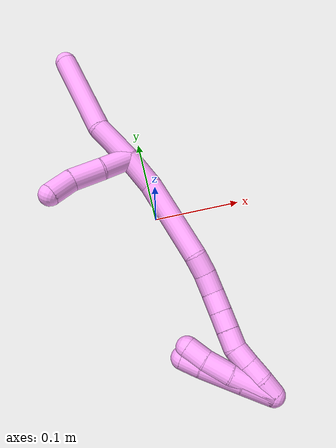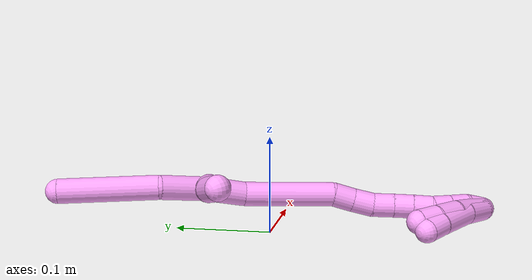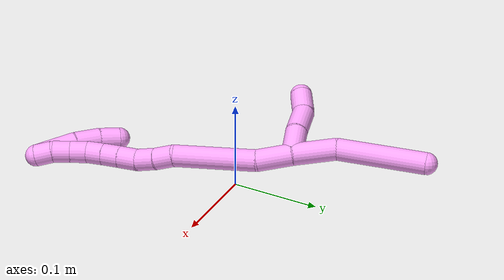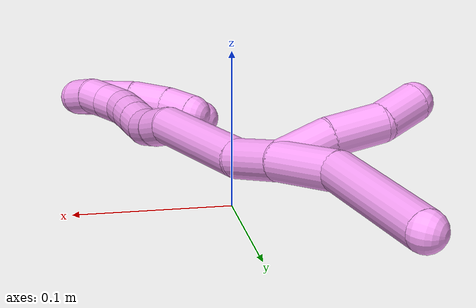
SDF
<sdf version="1.7">
 <world name="default">
  <model name="photoneo_s_sensor">
   <static>1</static>
   <pose>0 0 2 1.57079 1.57079 3.14159</pose>
   <link name="link">
    <inertial><mass>0.1</mass></inertial>
    <sensor name="sensor" type="depth">
     <update_rate>30</update_rate>
     <camera>
      <horizontal_fov>1.22</horizontal_fov>
      <image><width>1920</width><height>1200</height><format>B8G8R8</format></image>
      <clip><near>0.1</near><far>4</far></clip>
      <depth_camera><output>points</output></depth_camera>
     </camera>
     <plugin name="camera_plugin" filename="libgazebo_ros_depth_camera.so">
      <baseline>0.2</baseline>
      <alwaysOn>1</alwaysOn>
      <updateRate>0.0</updateRate>
      <cameraName>camera_ir</cameraName>
      <imageTopicName>/camera/color/image_raw</imageTopicName>
      <cameraInfoTopicName>/camera/color/camera_info</cameraInfoTopicName>
      <depthImageTopicName>/camera/depth/image_raw</depthImageTopicName>
      <depthImageCameraInfoTopicName>/camera/depth/camera_info</depthImageCameraInfoTopicName>
      <pointCloudTopicName>/camera/depth/points</pointCloudTopicName>
      <frameName>fr_optical</frameName>
      <pointCloudCutoff>0.1</pointCloudCutoff>
      <pointCloudCutoffMax>2.0</pointCloudCutoffMax>
      <distortionK1>0</distortionK1>
      <distortionK2>0</distortionK2>
      <distortionK3>0</distortionK3>
      <distortionT1>0</distortionT1>
      <distortionT2>0</distortionT2>
      <CxPrime>0</CxPrime>
      <Cx>0</Cx>
      <Cy>0</Cy>
      <focalLength>0</focalLength>
      <hackBaseline>0</hackBaseline>
     </plugin>
    </sensor>
   </link>
  </model>
  <model name="bin">
   <static>1</static>
   <link name="bottom">
    <collision name="collision-bottom">
     <pose>0 0 -0.01 0 -0 0</pose>
     <geometry><box><size>0.8 0.6 0.02</size></box></geometry>
     <surface>
      <friction><ode><mu>100</mu><mu2>100</mu2></ode></friction>
      <contact><collide_bitmask>65535</collide_bitmask></contact>
     </surface>
    </collision>
   </link>
   <link name="west_wall">
    <collision name="collision-west_wall">
     <pose>-0.41 0 0.1 0 -0 0</pose>
     <geometry><box><size>0.02 0.6 0.2</size></box></geometry>
     <surface>
      <friction><ode><mu>100</mu><mu2>100</mu2></ode></friction>
      <contact><collide_bitmask>65535</collide_bitmask></contact>
     </surface>
    </collision>
   </link>
   <link name="east_wall">
    <collision name="collision-east_wall">
     <pose>0.41 0 0.1 0 -0 0</pose>
     <geometry><box><size>0.02 0.6 0.2</size></box></geometry>
     <surface>
      <friction><ode><mu>100</mu><mu2>100</mu2></ode></friction>
      <contact><collide_bitmask>65535</collide_bitmask></contact>
     </surface>
    </collision>
   </link>
   <link name="south_wall">
    <collision name="collision-south_wall">
     <pose>0 -0.31 0.1 0 -0 0</pose>
     <geometry><box><size>0.8 0.02 0.2</size></box></geometry>
     <surface>
      <friction><ode><mu>100</mu><mu2>100</mu2></ode></friction>
      <contact><collide_bitmask>65535</collide_bitmask></contact>
     </surface>
    </collision>
   </link>
   <link name="north_wall">
    <collision name="collision-north_wall">
     <pose>0 0.31 0.1 0 -0 0</pose>
     <geometry><box><size>0.8 0.02 0.2</size></box></geometry>
     <surface>
      <friction><ode><mu>100</mu><mu2>100</mu2></ode></friction>
      <contact><collide_bitmask>65535</collide_bitmask></contact>
     </surface>
    </collision>
   </link>
  </model>
  <model name="4">
   <static>0</static>
   <link name="4">
    <collision name="collision-cylinder-e_1_2_8">
     <pose>0.000713 0.009775 -0.022776 -2.7362 0.028779 -0.13981</pose>
     <geometry><cylinder><radius>0.0125</radius><length>0.049591</length></cylinder></geometry>
     <surface>
      <friction><ode><mu>1.16</mu><mu2>1.16</mu2><slip1>0</slip1><slip2>0</slip2></ode></friction>
      <contact><ode><kp>1e+06</kp><kd>1</kd><max_vel>0</max_vel><min_depth>0.001</min_depth></ode></contact>
     </surface>
    </collision>
    <visual name="visual-cylinder-e_1_2_8">
     <pose>0.000713 0.009775 -0.022776 -2.7362 0.028779 -0.13981</pose>
     <geometry><cylinder><radius>0.0125</radius><length>0.049591</length></cylinder></geometry>
     <material><ambient>1 0.65098 0.996078 1</ambient></material>
    </visual>
    <collision name="collision-cylinder-e_2_8_6">
     <pose>0.017223 0.046143 -0.085097 -2.54957 0.32006 -0.973568</pose>
     <geometry><cylinder><radius>0.0125</radius><length>0.100409</length></cylinder></geometry>
     <surface>
      <friction><ode><mu>1.16</mu><mu2>1.16</mu2><slip1>0</slip1><slip2>0</slip2></ode></friction>
      <contact><ode><kp>1e+06</kp><kd>1</kd><max_vel>0</max_vel><min_depth>0.001</min_depth></ode></contact>
     </surface>
    </collision>
    <visual name="visual-cylinder-e_2_8_6">
     <pose>0.017223 0.046143 -0.085097 -2.54957 0.32006 -0.973568</pose>
     <geometry><cylinder><radius>0.0125</radius><length>0.100409</length></cylinder></geometry>
     <material><ambient>1 0.65098 0.996078 1</ambient></material>
    </visual>
    <collision name="collision-cylinder-e_1_2_9">
     <pose>-0.012884 -0.008161 -0.008412 2.37134 -0.832647 -1.65758</pose>
     <geometry><cylinder><radius>0.0125</radius><length>0.034834</length></cylinder></geometry>
     <surface>
      <friction><ode><mu>1.16</mu><mu2>1.16</mu2><slip1>0</slip1><slip2>0</slip2></ode></friction>
      <contact><ode><kp>1e+06</kp><kd>1</kd><max_vel>0</max_vel><min_depth>0.001</min_depth></ode></contact>
     </surface>
    </collision>
    <visual name="visual-cylinder-e_1_2_9">
     <pose>-0.012884 -0.008161 -0.008412 2.37134 -0.832647 -1.65758</pose>
     <geometry><cylinder><radius>0.0125</radius><length>0.034834</length></cylinder></geometry>
     <material><ambient>1 0.65098 0.996078 1</ambient></material>
    </visual>
    <collision name="collision-cylinder-e_2_9_10">
     <pose>-0.036897 -0.025715 -0.027354 2.41321 -0.66787 -1.47673</pose>
     <geometry><cylinder><radius>0.0125</radius><length>0.035943</length></cylinder></geometry>
     <surface>
      <friction><ode><mu>1.16</mu><mu2>1.16</mu2><slip1>0</slip1><slip2>0</slip2></ode></friction>
      <contact><ode><kp>1e+06</kp><kd>1</kd><max_vel>0</max_vel><min_depth>0.001</min_depth></ode></contact>
     </surface>
    </collision>
    <visual name="visual-cylinder-e_2_9_10">
     <pose>-0.036897 -0.025715 -0.027354 2.41321 -0.66787 -1.47673</pose>
     <geometry><cylinder><radius>0.0125</radius><length>0.035943</length></cylinder></geometry>
     <material><ambient>1 0.65098 0.996078 1</ambient></material>
    </visual>
    <collision name="collision-cylinder-e_3_10_5">
     <pose>-0.059169 -0.043542 -0.042151 2.03922 -0.867211 -1.29103</pose>
     <geometry><cylinder><radius>0.0125</radius><length>0.029223</length></cylinder></geometry>
     <surface>
      <friction><ode><mu>1.16</mu><mu2>1.16</mu2><slip1>0</slip1><slip2>0</slip2></ode></friction>
      <contact><ode><kp>1e+06</kp><kd>1</kd><max_vel>0</max_vel><min_depth>0.001</min_depth></ode></contact>
     </surface>
    </collision>
    <visual name="visual-cylinder-e_3_10_5">
     <pose>-0.059169 -0.043542 -0.042151 2.03922 -0.867211 -1.29103</pose>
     <geometry><cylinder><radius>0.0125</radius><length>0.029223</length></cylinder></geometry>
     <material><ambient>1 0.65098 0.996078 1</ambient></material>
    </visual>
    <collision name="collision-cylinder-e_1_2_11">
     <pose>0.000258 -0.009718 0.017596 0.504609 0.012817 0.003304</pose>
     <geometry><cylinder><radius>0.0125</radius><length>0.040206</length></cylinder></geometry>
     <surface>
      <friction><ode><mu>1.16</mu><mu2>1.16</mu2><slip1>0</slip1><slip2>0</slip2></ode></friction>
      <contact><ode><kp>1e+06</kp><kd>1</kd><max_vel>0</max_vel><min_depth>0.001</min_depth></ode></contact>
     </surface>
    </collision>
    <visual name="visual-cylinder-e_1_2_11">
     <pose>0.000258 -0.009718 0.017596 0.504609 0.012817 0.003304</pose>
     <geometry><cylinder><radius>0.0125</radius><length>0.040206</length></cylinder></geometry>
     <material><ambient>1 0.65098 0.996078 1</ambient></material>
    </visual>
    <collision name="collision-cylinder-e_2_11_12">
     <pose>-0.009602 -0.043342 0.074087 0.551092 -0.21809 -0.061888</pose>
     <geometry><cylinder><radius>0.0125</radius><length>0.093523</length></cylinder></geometry>
     <surface>
      <friction><ode><mu>1.16</mu><mu2>1.16</mu2><slip1>0</slip1><slip2>0</slip2></ode></friction>
      <contact><ode><kp>1e+06</kp><kd>1</kd><max_vel>0</max_vel><min_depth>0.001</min_depth></ode></contact>
     </surface>
    </collision>
    <visual name="visual-cylinder-e_2_11_12">
     <pose>-0.009602 -0.043342 0.074087 0.551092 -0.21809 -0.061888</pose>
     <geometry><cylinder><radius>0.0125</radius><length>0.093523</length></cylinder></geometry>
     <material><ambient>1 0.65098 0.996078 1</ambient></material>
    </visual>
    <collision name="collision-cylinder-e_3_12_13">
     <pose>-0.019688 -0.074482 0.121252 0.718696 0.002891 0.001086</pose>
     <geometry><cylinder><radius>0.0125</radius><length>0.021977</length></cylinder></geometry>
     <surface>
      <friction><ode><mu>1.16</mu><mu2>1.16</mu2><slip1>0</slip1><slip2>0</slip2></ode></friction>
      <contact><ode><kp>1e+06</kp><kd>1</kd><max_vel>0</max_vel><min_depth>0.001</min_depth></ode></contact>
     </surface>
    </collision>
    <visual name="visual-cylinder-e_3_12_13">
     <pose>-0.019688 -0.074482 0.121252 0.718696 0.002891 0.001086</pose>
     <geometry><cylinder><radius>0.0125</radius><length>0.021977</length></cylinder></geometry>
     <material><ambient>1 0.65098 0.996078 1</ambient></material>
    </visual>
    <collision name="collision-cylinder-e_4_13_14">
     <pose>-0.020852 -0.089499 0.13742 0.778068 -0.107403 -0.044062</pose>
     <geometry><cylinder><radius>0.0125</radius><length>0.022303</length></cylinder></geometry>
     <surface>
      <friction><ode><mu>1.16</mu><mu2>1.16</mu2><slip1>0</slip1><slip2>0</slip2></ode></friction>
      <contact><ode><kp>1e+06</kp><kd>1</kd><max_vel>0</max_vel><min_depth>0.001</min_depth></ode></contact>
     </surface>
    </collision>
    <visual name="visual-cylinder-e_4_13_14">
     <pose>-0.020852 -0.089499 0.13742 0.778068 -0.107403 -0.044062</pose>
     <geometry><cylinder><radius>0.0125</radius><length>0.022303</length></cylinder></geometry>
     <material><ambient>1 0.65098 0.996078 1</ambient></material>
    </visual>
    <collision name="collision-cylinder-e_5_14_15">
     <pose>-0.025511 -0.10401 0.15326 0.702868 -0.321281 -0.118683</pose>
     <geometry><cylinder><radius>0.0125</radius><length>0.021941</length></cylinder></geometry>
     <surface>
      <friction><ode><mu>1.16</mu><mu2>1.16</mu2><slip1>0</slip1><slip2>0</slip2></ode></friction>
      <contact><ode><kp>1e+06</kp><kd>1</kd><max_vel>0</max_vel><min_depth>0.001</min_depth></ode></contact>
     </surface>
    </collision>
    <visual name="visual-cylinder-e_5_14_15">
     <pose>-0.025511 -0.10401 0.15326 0.702868 -0.321281 -0.118683</pose>
     <geometry><cylinder><radius>0.0125</radius><length>0.021941</length></cylinder></geometry>
     <material><ambient>1 0.65098 0.996078 1</ambient></material>
    </visual>
    <collision name="collision-cylinder-e_6_15_16">
     <pose>-0.032081 -0.116984 0.16838 0.716075 -0.315473 -0.118887</pose>
     <geometry><cylinder><radius>0.0125</radius><length>0.020019</length></cylinder></geometry>
     <surface>
      <friction><ode><mu>1.16</mu><mu2>1.16</mu2><slip1>0</slip1><slip2>0</slip2></ode></friction>
      <contact><ode><kp>1e+06</kp><kd>1</kd><max_vel>0</max_vel><min_depth>0.001</min_depth></ode></contact>
     </surface>
    </collision>
    <visual name="visual-cylinder-e_6_15_16">
     <pose>-0.032081 -0.116984 0.16838 0.716075 -0.315473 -0.118887</pose>
     <geometry><cylinder><radius>0.0125</radius><length>0.020019</length></cylinder></geometry>
     <material><ambient>1 0.65098 0.996078 1</ambient></material>
    </visual>
    <collision name="collision-cylinder-e_7_16_17">
     <pose>-0.038061 -0.129571 0.182749 0.722674 -0.291276 -0.110754</pose>
     <geometry><cylinder><radius>0.0125</radius><length>0.020017</length></cylinder></geometry>
     <surface>
      <friction><ode><mu>1.16</mu><mu2>1.16</mu2><slip1>0</slip1><slip2>0</slip2></ode></friction>
      <contact><ode><kp>1e+06</kp><kd>1</kd><max_vel>0</max_vel><min_depth>0.001</min_depth></ode></contact>
     </surface>
    </collision>
    <visual name="visual-cylinder-e_7_16_17">
     <pose>-0.038061 -0.129571 0.182749 0.722674 -0.291276 -0.110754</pose>
     <geometry><cylinder><radius>0.0125</radius><length>0.020017</length></cylinder></geometry>
     <material><ambient>1 0.65098 0.996078 1</ambient></material>
    </visual>
    <collision name="collision-cylinder-e_8_17_18">
     <pose>-0.04258 -0.140018 0.198914 0.429057 -0.165147 -0.036061</pose>
     <geometry><cylinder><radius>0.0125</radius><length>0.02001</length></cylinder></geometry>
     <surface>
      <friction><ode><mu>1.16</mu><mu2>1.16</mu2><slip1>0</slip1><slip2>0</slip2></ode></friction>
      <contact><ode><kp>1e+06</kp><kd>1</kd><max_vel>0</max_vel><min_depth>0.001</min_depth></ode></contact>
     </surface>
    </collision>
    <visual name="visual-cylinder-e_8_17_18">
     <pose>-0.04258 -0.140018 0.198914 0.429057 -0.165147 -0.036061</pose>
     <geometry><cylinder><radius>0.0125</radius><length>0.02001</length></cylinder></geometry>
     <material><ambient>1 0.65098 0.996078 1</ambient></material>
    </visual>
    <collision name="collision-cylinder-e_9_18_19">
     <pose>-0.04577 -0.147994 0.216981 0.402499 -0.155053 -0.031693</pose>
     <geometry><cylinder><radius>0.0125</radius><length>0.020004</length></cylinder></geometry>
     <surface>
      <friction><ode><mu>1.16</mu><mu2>1.16</mu2><slip1>0</slip1><slip2>0</slip2></ode></friction>
      <contact><ode><kp>1e+06</kp><kd>1</kd><max_vel>0</max_vel><min_depth>0.001</min_depth></ode></contact>
     </surface>
    </collision>
    <visual name="visual-cylinder-e_9_18_19">
     <pose>-0.04577 -0.147994 0.216981 0.402499 -0.155053 -0.031693</pose>
     <geometry><cylinder><radius>0.0125</radius><length>0.020004</length></cylinder></geometry>
     <material><ambient>1 0.65098 0.996078 1</ambient></material>
    </visual>
    <collision name="collision-cylinder-e_10_19_1">
     <pose>-0.046771 -0.15695 0.234667 0.534238 0.054293 0.014861</pose>
     <geometry><cylinder><radius>0.0125</radius><length>0.02</length></cylinder></geometry>
     <surface>
      <friction><ode><mu>1.16</mu><mu2>1.16</mu2><slip1>0</slip1><slip2>0</slip2></ode></friction>
      <contact><ode><kp>1e+06</kp><kd>1</kd><max_vel>0</max_vel><min_depth>0.001</min_depth></ode></contact>
     </surface>
    </collision>
    <visual name="visual-cylinder-e_10_19_1">
     <pose>-0.046771 -0.15695 0.234667 0.534238 0.054293 0.014861</pose>
     <geometry><cylinder><radius>0.0125</radius><length>0.02</length></cylinder></geometry>
     <material><ambient>1 0.65098 0.996078 1</ambient></material>
    </visual>
    <collision name="collision-cylinder-e_1_1_20">
     <pose>-0.049388 -0.161873 0.226558 -3.13198 -0.186898 3.03915</pose>
     <geometry><cylinder><radius>0.0125</radius><length>0.034</length></cylinder></geometry>
     <surface>
      <friction><ode><mu>1.16</mu><mu2>1.16</mu2><slip1>0</slip1><slip2>0</slip2></ode></friction>
      <contact><ode><kp>1e+06</kp><kd>1</kd><max_vel>0</max_vel><min_depth>0.001</min_depth></ode></contact>
     </surface>
    </collision>
    <visual name="visual-cylinder-e_1_1_20">
     <pose>-0.049388 -0.161873 0.226558 -3.13198 -0.186898 3.03915</pose>
     <geometry><cylinder><radius>0.0125</radius><length>0.034</length></cylinder></geometry>
     <material><ambient>1 0.65098 0.996078 1</ambient></material>
    </visual>
    <collision name="collision-cylinder-e_2_20_21">
     <pose>-0.054123 -0.162969 0.187922 3.08439 -0.071656 -1.79428</pose>
     <geometry><cylinder><radius>0.0125</radius><length>0.04405</length></cylinder></geometry>
     <surface>
      <friction><ode><mu>1.16</mu><mu2>1.16</mu2><slip1>0</slip1><slip2>0</slip2></ode></friction>
      <contact><ode><kp>1e+06</kp><kd>1</kd><max_vel>0</max_vel><min_depth>0.001</min_depth></ode></contact>
     </surface>
    </collision>
    <visual name="visual-cylinder-e_2_20_21">
     <pose>-0.054123 -0.162969 0.187922 3.08439 -0.071656 -1.79428</pose>
     <geometry><cylinder><radius>0.0125</radius><length>0.04405</length></cylinder></geometry>
     <material><ambient>1 0.65098 0.996078 1</ambient></material>
    </visual>
    <collision name="collision-cylinder-e_3_21_4">
     <pose>-0.055478 -0.164775 0.15503 3.09147 0.020242 0.767547</pose>
     <geometry><cylinder><radius>0.0125</radius><length>0.021951</length></cylinder></geometry>
     <surface>
      <friction><ode><mu>1.16</mu><mu2>1.16</mu2><slip1>0</slip1><slip2>0</slip2></ode></friction>
      <contact><ode><kp>1e+06</kp><kd>1</kd><max_vel>0</max_vel><min_depth>0.001</min_depth></ode></contact>
     </surface>
    </collision>
    <visual name="visual-cylinder-e_3_21_4">
     <pose>-0.055478 -0.164775 0.15503 3.09147 0.020242 0.767547</pose>
     <geometry><cylinder><radius>0.0125</radius><length>0.021951</length></cylinder></geometry>
     <material><ambient>1 0.65098 0.996078 1</ambient></material>
    </visual>
    <collision name="collision-cylinder-e_1_1_22">
     <pose>-0.050675 -0.160213 0.219769 -3.06424 -0.186496 2.35698</pose>
     <geometry><cylinder><radius>0.0125</radius><length>0.047956</length></cylinder></geometry>
     <surface>
      <friction><ode><mu>1.16</mu><mu2>1.16</mu2><slip1>0</slip1><slip2>0</slip2></ode></friction>
      <contact><ode><kp>1e+06</kp><kd>1</kd><max_vel>0</max_vel><min_depth>0.001</min_depth></ode></contact>
     </surface>
    </collision>
    <visual name="visual-cylinder-e_1_1_22">
     <pose>-0.050675 -0.160213 0.219769 -3.06424 -0.186496 2.35698</pose>
     <geometry><cylinder><radius>0.0125</radius><length>0.047956</length></cylinder></geometry>
     <material><ambient>1 0.65098 0.996078 1</ambient></material>
    </visual>
    <collision name="collision-cylinder-e_2_22_23">
     <pose>-0.055769 -0.157173 0.181819 -3.05747 -0.04467 0.975961</pose>
     <geometry><cylinder><radius>0.0125</radius><length>0.029048</length></cylinder></geometry>
     <surface>
      <friction><ode><mu>1.16</mu><mu2>1.16</mu2><slip1>0</slip1><slip2>0</slip2></ode></friction>
      <contact><ode><kp>1e+06</kp><kd>1</kd><max_vel>0</max_vel><min_depth>0.001</min_depth></ode></contact>
     </surface>
    </collision>
    <visual name="visual-cylinder-e_2_22_23">
     <pose>-0.055769 -0.157173 0.181819 -3.05747 -0.04467 0.975961</pose>
     <geometry><cylinder><radius>0.0125</radius><length>0.029048</length></cylinder></geometry>
     <material><ambient>1 0.65098 0.996078 1</ambient></material>
    </visual>
    <collision name="collision-cylinder-e_3_23_3">
     <pose>-0.055306 -0.154074 0.156072 -2.9765 0.096892 -1.06013</pose>
     <geometry><cylinder><radius>0.0125</radius><length>0.022996</length></cylinder></geometry>
     <surface>
      <friction><ode><mu>1.16</mu><mu2>1.16</mu2><slip1>0</slip1><slip2>0</slip2></ode></friction>
      <contact><ode><kp>1e+06</kp><kd>1</kd><max_vel>0</max_vel><min_depth>0.001</min_depth></ode></contact>
     </surface>
    </collision>
    <visual name="visual-cylinder-e_3_23_3">
     <pose>-0.055306 -0.154074 0.156072 -2.9765 0.096892 -1.06013</pose>
     <geometry><cylinder><radius>0.0125</radius><length>0.022996</length></cylinder></geometry>
     <material><ambient>1 0.65098 0.996078 1</ambient></material>
    </visual>
    <collision name="collision-sphere-3">
     <pose>-0.054193 -0.152193 0.144784 0 -0 0</pose>
     <geometry><sphere><radius>0.0125</radius></sphere></geometry>
     <surface>
      <friction><ode><mu>1.16</mu><mu2>1.16</mu2><slip1>0</slip1><slip2>0</slip2></ode></friction>
      <contact><ode><kp>1e+06</kp><kd>1</kd><max_vel>0</max_vel><min_depth>0.001</min_depth></ode></contact>
     </surface>
    </collision>
    <visual name="visual-sphere-3">
     <pose>-0.054193 -0.152193 0.144784 0 -0 0</pose>
     <geometry><sphere><radius>0.0125</radius></sphere></geometry>
     <material><ambient>1 0.65098 0.996078 1</ambient></material>
    </visual>
    <collision name="collision-sphere-23">
     <pose>-0.056418 -0.155954 0.16736 0 -0 0</pose>
     <geometry><sphere><radius>0.0125</radius></sphere></geometry>
     <surface>
      <friction><ode><mu>1.16</mu><mu2>1.16</mu2><slip1>0</slip1><slip2>0</slip2></ode></friction>
      <contact><ode><kp>1e+06</kp><kd>1</kd><max_vel>0</max_vel><min_depth>0.001</min_depth></ode></contact>
     </surface>
    </collision>
    <visual name="visual-sphere-23">
     <pose>-0.056418 -0.155954 0.16736 0 -0 0</pose>
     <geometry><sphere><radius>0.0125</radius></sphere></geometry>
     <material><ambient>1 0.65098 0.996078 1</ambient></material>
    </visual>
    <collision name="collision-sphere-22">
     <pose>-0.055121 -0.158393 0.196277 0 -0 0</pose>
     <geometry><sphere><radius>0.0125</radius></sphere></geometry>
     <surface>
      <friction><ode><mu>1.16</mu><mu2>1.16</mu2><slip1>0</slip1><slip2>0</slip2></ode></friction>
      <contact><ode><kp>1e+06</kp><kd>1</kd><max_vel>0</max_vel><min_depth>0.001</min_depth></ode></contact>
     </surface>
    </collision>
    <visual name="visual-sphere-22">
     <pose>-0.055121 -0.158393 0.196277 0 -0 0</pose>
     <geometry><sphere><radius>0.0125</radius></sphere></geometry>
     <material><ambient>1 0.65098 0.996078 1</ambient></material>
    </visual>
    <collision name="collision-sphere-4">
     <pose>-0.055256 -0.165325 0.144071 0 -0 0</pose>
     <geometry><sphere><radius>0.0125</radius></sphere></geometry>
     <surface>
      <friction><ode><mu>1.16</mu><mu2>1.16</mu2><slip1>0</slip1><slip2>0</slip2></ode></friction>
      <contact><ode><kp>1e+06</kp><kd>1</kd><max_vel>0</max_vel><min_depth>0.001</min_depth></ode></contact>
     </surface>
    </collision>
    <visual name="visual-sphere-4">
     <pose>-0.055256 -0.165325 0.144071 0 -0 0</pose>
     <geometry><sphere><radius>0.0125</radius></sphere></geometry>
     <material><ambient>1 0.65098 0.996078 1</ambient></material>
    </visual>
    <collision name="collision-sphere-21">
     <pose>-0.0557 -0.164225 0.16599 0 -0 0</pose>
     <geometry><sphere><radius>0.0125</radius></sphere></geometry>
     <surface>
      <friction><ode><mu>1.16</mu><mu2>1.16</mu2><slip1>0</slip1><slip2>0</slip2></ode></friction>
      <contact><ode><kp>1e+06</kp><kd>1</kd><max_vel>0</max_vel><min_depth>0.001</min_depth></ode></contact>
     </surface>
    </collision>
    <visual name="visual-sphere-21">
     <pose>-0.0557 -0.164225 0.16599 0 -0 0</pose>
     <geometry><sphere><radius>0.0125</radius></sphere></geometry>
     <material><ambient>1 0.65098 0.996078 1</ambient></material>
    </visual>
    <collision name="collision-sphere-20">
     <pose>-0.052546 -0.161713 0.209855 0 -0 0</pose>
     <geometry><sphere><radius>0.0125</radius></sphere></geometry>
     <surface>
      <friction><ode><mu>1.16</mu><mu2>1.16</mu2><slip1>0</slip1><slip2>0</slip2></ode></friction>
      <contact><ode><kp>1e+06</kp><kd>1</kd><max_vel>0</max_vel><min_depth>0.001</min_depth></ode></contact>
     </surface>
    </collision>
    <visual name="visual-sphere-20">
     <pose>-0.052546 -0.161713 0.209855 0 -0 0</pose>
     <geometry><sphere><radius>0.0125</radius></sphere></geometry>
     <material><ambient>1 0.65098 0.996078 1</ambient></material>
    </visual>
    <collision name="collision-sphere-5">
     <pose>-0.070311 -0.051977 -0.046419 0 -0 0</pose>
     <geometry><sphere><radius>0.0125</radius></sphere></geometry>
     <surface>
      <friction><ode><mu>1.16</mu><mu2>1.16</mu2><slip1>0</slip1><slip2>0</slip2></ode></friction>
      <contact><ode><kp>1e+06</kp><kd>1</kd><max_vel>0</max_vel><min_depth>0.001</min_depth></ode></contact>
     </surface>
    </collision>
    <visual name="visual-sphere-5">
     <pose>-0.070311 -0.051977 -0.046419 0 -0 0</pose>
     <geometry><sphere><radius>0.0125</radius></sphere></geometry>
     <material><ambient>1 0.65098 0.996078 1</ambient></material>
    </visual>
    <collision name="collision-sphere-10">
     <pose>-0.048027 -0.035108 -0.037884 0 -0 0</pose>
     <geometry><sphere><radius>0.0125</radius></sphere></geometry>
     <surface>
      <friction><ode><mu>1.16</mu><mu2>1.16</mu2><slip1>0</slip1><slip2>0</slip2></ode></friction>
      <contact><ode><kp>1e+06</kp><kd>1</kd><max_vel>0</max_vel><min_depth>0.001</min_depth></ode></contact>
     </surface>
    </collision>
    <visual name="visual-sphere-10">
     <pose>-0.048027 -0.035108 -0.037884 0 -0 0</pose>
     <geometry><sphere><radius>0.0125</radius></sphere></geometry>
     <material><ambient>1 0.65098 0.996078 1</ambient></material>
    </visual>
    <collision name="collision-sphere-6">
     <pose>0.033018 0.072737 -0.124642 0 -0 0</pose>
     <geometry><sphere><radius>0.0125</radius></sphere></geometry>
     <surface>
      <friction><ode><mu>1.16</mu><mu2>1.16</mu2><slip1>0</slip1><slip2>0</slip2></ode></friction>
      <contact><ode><kp>1e+06</kp><kd>1</kd><max_vel>0</max_vel><min_depth>0.001</min_depth></ode></contact>
     </surface>
    </collision>
    <visual name="visual-sphere-6">
     <pose>0.033018 0.072737 -0.124642 0 -0 0</pose>
     <geometry><sphere><radius>0.0125</radius></sphere></geometry>
     <material><ambient>1 0.65098 0.996078 1</ambient></material>
    </visual>
    <collision name="collision-sphere-9">
     <pose>-0.025767 -0.016322 -0.016824 0 -0 0</pose>
     <geometry><sphere><radius>0.0125</radius></sphere></geometry>
     <surface>
      <friction><ode><mu>1.16</mu><mu2>1.16</mu2><slip1>0</slip1><slip2>0</slip2></ode></friction>
      <contact><ode><kp>1e+06</kp><kd>1</kd><max_vel>0</max_vel><min_depth>0.001</min_depth></ode></contact>
     </surface>
    </collision>
    <visual name="visual-sphere-9">
     <pose>-0.025767 -0.016322 -0.016824 0 -0 0</pose>
     <geometry><sphere><radius>0.0125</radius></sphere></geometry>
     <material><ambient>1 0.65098 0.996078 1</ambient></material>
    </visual>
    <collision name="collision-sphere-2">
     <geometry><sphere><radius>0.0125</radius></sphere></geometry>
     <surface>
      <friction><ode><mu>1.16</mu><mu2>1.16</mu2><slip1>0</slip1><slip2>0</slip2></ode></friction>
      <contact><ode><kp>1e+06</kp><kd>1</kd><max_vel>0</max_vel><min_depth>0.001</min_depth></ode></contact>
     </surface>
    </collision>
    <visual name="visual-sphere-2">
     <geometry><sphere><radius>0.0125</radius></sphere></geometry>
     <material><ambient>1 0.65098 0.996078 1</ambient></material>
    </visual>
    <collision name="collision-sphere-19">
     <pose>-0.047314 -0.151865 0.226073 0 -0 0</pose>
     <geometry><sphere><radius>0.0125</radius></sphere></geometry>
     <surface>
      <friction><ode><mu>1.16</mu><mu2>1.16</mu2><slip1>0</slip1><slip2>0</slip2></ode></friction>
      <contact><ode><kp>1e+06</kp><kd>1</kd><max_vel>0</max_vel><min_depth>0.001</min_depth></ode></contact>
     </surface>
    </collision>
    <visual name="visual-sphere-19">
     <pose>-0.047314 -0.151865 0.226073 0 -0 0</pose>
     <geometry><sphere><radius>0.0125</radius></sphere></geometry>
     <material><ambient>1 0.65098 0.996078 1</ambient></material>
    </visual>
    <collision name="collision-sphere-8">
     <pose>0.001427 0.01955 -0.045552 0 -0 0</pose>
     <geometry><sphere><radius>0.0125</radius></sphere></geometry>
     <surface>
      <friction><ode><mu>1.16</mu><mu2>1.16</mu2><slip1>0</slip1><slip2>0</slip2></ode></friction>
      <contact><ode><kp>1e+06</kp><kd>1</kd><max_vel>0</max_vel><min_depth>0.001</min_depth></ode></contact>
     </surface>
    </collision>
    <visual name="visual-sphere-8">
     <pose>0.001427 0.01955 -0.045552 0 -0 0</pose>
     <geometry><sphere><radius>0.0125</radius></sphere></geometry>
     <material><ambient>1 0.65098 0.996078 1</ambient></material>
    </visual>
    <collision name="collision-sphere-11">
     <pose>0.000515 -0.019437 0.035192 0 -0 0</pose>
     <geometry><sphere><radius>0.0125</radius></sphere></geometry>
     <surface>
      <friction><ode><mu>1.16</mu><mu2>1.16</mu2><slip1>0</slip1><slip2>0</slip2></ode></friction>
      <contact><ode><kp>1e+06</kp><kd>1</kd><max_vel>0</max_vel><min_depth>0.001</min_depth></ode></contact>
     </surface>
    </collision>
    <visual name="visual-sphere-11">
     <pose>0.000515 -0.019437 0.035192 0 -0 0</pose>
     <geometry><sphere><radius>0.0125</radius></sphere></geometry>
     <material><ambient>1 0.65098 0.996078 1</ambient></material>
    </visual>
    <collision name="collision-sphere-12">
     <pose>-0.01972 -0.067247 0.112982 0 -0 0</pose>
     <geometry><sphere><radius>0.0125</radius></sphere></geometry>
     <surface>
      <friction><ode><mu>1.16</mu><mu2>1.16</mu2><slip1>0</slip1><slip2>0</slip2></ode></friction>
      <contact><ode><kp>1e+06</kp><kd>1</kd><max_vel>0</max_vel><min_depth>0.001</min_depth></ode></contact>
     </surface>
    </collision>
    <visual name="visual-sphere-12">
     <pose>-0.01972 -0.067247 0.112982 0 -0 0</pose>
     <geometry><sphere><radius>0.0125</radius></sphere></geometry>
     <material><ambient>1 0.65098 0.996078 1</ambient></material>
    </visual>
    <collision name="collision-sphere-13">
     <pose>-0.019656 -0.081716 0.129523 0 -0 0</pose>
     <geometry><sphere><radius>0.0125</radius></sphere></geometry>
     <surface>
      <friction><ode><mu>1.16</mu><mu2>1.16</mu2><slip1>0</slip1><slip2>0</slip2></ode></friction>
      <contact><ode><kp>1e+06</kp><kd>1</kd><max_vel>0</max_vel><min_depth>0.001</min_depth></ode></contact>
     </surface>
    </collision>
    <visual name="visual-sphere-13">
     <pose>-0.019656 -0.081716 0.129523 0 -0 0</pose>
     <geometry><sphere><radius>0.0125</radius></sphere></geometry>
     <material><ambient>1 0.65098 0.996078 1</ambient></material>
    </visual>
    <collision name="collision-sphere-14">
     <pose>-0.022047 -0.097281 0.145317 0 -0 0</pose>
     <geometry><sphere><radius>0.0125</radius></sphere></geometry>
     <surface>
      <friction><ode><mu>1.16</mu><mu2>1.16</mu2><slip1>0</slip1><slip2>0</slip2></ode></friction>
      <contact><ode><kp>1e+06</kp><kd>1</kd><max_vel>0</max_vel><min_depth>0.001</min_depth></ode></contact>
     </surface>
    </collision>
    <visual name="visual-sphere-14">
     <pose>-0.022047 -0.097281 0.145317 0 -0 0</pose>
     <geometry><sphere><radius>0.0125</radius></sphere></geometry>
     <material><ambient>1 0.65098 0.996078 1</ambient></material>
    </visual>
    <collision name="collision-sphere-15">
     <pose>-0.028976 -0.110738 0.161202 0 -0 0</pose>
     <geometry><sphere><radius>0.0125</radius></sphere></geometry>
     <surface>
      <friction><ode><mu>1.16</mu><mu2>1.16</mu2><slip1>0</slip1><slip2>0</slip2></ode></friction>
      <contact><ode><kp>1e+06</kp><kd>1</kd><max_vel>0</max_vel><min_depth>0.001</min_depth></ode></contact>
     </surface>
    </collision>
    <visual name="visual-sphere-15">
     <pose>-0.028976 -0.110738 0.161202 0 -0 0</pose>
     <geometry><sphere><radius>0.0125</radius></sphere></geometry>
     <material><ambient>1 0.65098 0.996078 1</ambient></material>
    </visual>
    <collision name="collision-sphere-16">
     <pose>-0.035187 -0.123231 0.175558 0 -0 0</pose>
     <geometry><sphere><radius>0.0125</radius></sphere></geometry>
     <surface>
      <friction><ode><mu>1.16</mu><mu2>1.16</mu2><slip1>0</slip1><slip2>0</slip2></ode></friction>
      <contact><ode><kp>1e+06</kp><kd>1</kd><max_vel>0</max_vel><min_depth>0.001</min_depth></ode></contact>
     </surface>
    </collision>
    <visual name="visual-sphere-16">
     <pose>-0.035187 -0.123231 0.175558 0 -0 0</pose>
     <geometry><sphere><radius>0.0125</radius></sphere></geometry>
     <material><ambient>1 0.65098 0.996078 1</ambient></material>
    </visual>
    <collision name="collision-sphere-17">
     <pose>-0.040935 -0.135912 0.18994 0 -0 0</pose>
     <geometry><sphere><radius>0.0125</radius></sphere></geometry>
     <surface>
      <friction><ode><mu>1.16</mu><mu2>1.16</mu2><slip1>0</slip1><slip2>0</slip2></ode></friction>
      <contact><ode><kp>1e+06</kp><kd>1</kd><max_vel>0</max_vel><min_depth>0.001</min_depth></ode></contact>
     </surface>
    </collision>
    <visual name="visual-sphere-17">
     <pose>-0.040935 -0.135912 0.18994 0 -0 0</pose>
     <geometry><sphere><radius>0.0125</radius></sphere></geometry>
     <material><ambient>1 0.65098 0.996078 1</ambient></material>
    </visual>
    <collision name="collision-sphere-18">
     <pose>-0.044225 -0.144123 0.207888 0 -0 0</pose>
     <geometry><sphere><radius>0.0125</radius></sphere></geometry>
     <surface>
      <friction><ode><mu>1.16</mu><mu2>1.16</mu2><slip1>0</slip1><slip2>0</slip2></ode></friction>
      <contact><ode><kp>1e+06</kp><kd>1</kd><max_vel>0</max_vel><min_depth>0.001</min_depth></ode></contact>
     </surface>
    </collision>
    <visual name="visual-sphere-18">
     <pose>-0.044225 -0.144123 0.207888 0 -0 0</pose>
     <geometry><sphere><radius>0.0125</radius></sphere></geometry>
     <material><ambient>1 0.65098 0.996078 1</ambient></material>
    </visual>
    <collision name="collision-sphere-1">
     <pose>-0.046229 -0.162034 0.24326 0 -0 0</pose>
     <geometry><sphere><radius>0.0125</radius></sphere></geometry>
     <surface>
      <friction><ode><mu>1.16</mu><mu2>1.16</mu2><slip1>0</slip1><slip2>0</slip2></ode></friction>
      <contact><ode><kp>1e+06</kp><kd>1</kd><max_vel>0</max_vel><min_depth>0.001</min_depth></ode></contact>
     </surface>
    </collision>
    <visual name="visual-sphere-1">
     <pose>-0.046229 -0.162034 0.24326 0 -0 0</pose>
     <geometry><sphere><radius>0.0125</radius></sphere></geometry>
     <material><ambient>1 0.65098 0.996078 1</ambient></material>
    </visual>
    <inertial>
     <pose>-0.02506 -0.071534 0.084511 0 -0 0</pose>
     <mass>0.75</mass>
     <inertia><ixx>4.7e-05</ixx><ixy>0</ixy><ixz>0</ixz><iyy>-3.9e-05</iyy><iyz>0</iyz><izz>-6e-06</izz></inertia>
    </inertial>
   </link>
   <pose>-0.017126 0.06212 0.047819 1.39751 0.943065 0.749073</pose>
  </model>
 </world>
</sdf>
